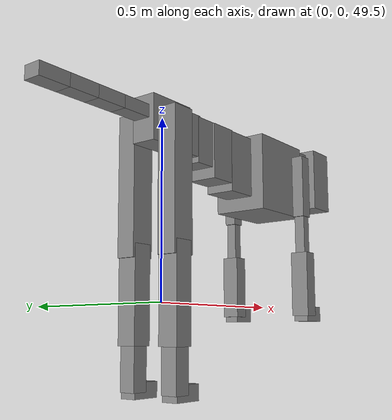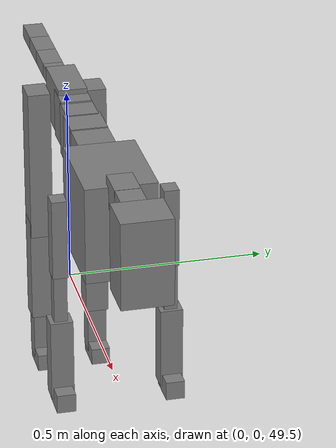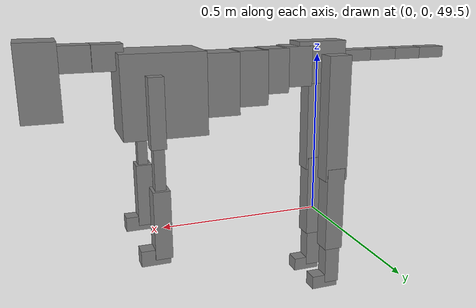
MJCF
<mujoco model="dog">

    <default>
        <joint armature="0.02" stiffness="1" damping="0.2" limited="true"/>
        <geom condim="3" friction="1 0.05 0.05" margin="0.01"/>
        <motor ctrllimited="true" ctrlrange="-1.0 1.0" forcelimited="true" gear="50"/>
    </default>

    <compiler inertiafromgeom="true" angle="radian"/>

    <option timestep="0.016" iterations="50" tolerance="1e-10" solver="Newton" jacobian="dense" cone="pyramidal"/>

    <size nconmax="20000" njmax="60000" nstack="5000000"/>
    <visual>
        <map force="0.1" zfar="30"/>
        <rgba haze="0.15 0.25 0.35 1"/>
        <quality shadowsize="2048"/>
        <global offwidth="800" offheight="800"/>
    </visual>

    <asset>
        <texture type="skybox" builtin="gradient" rgb1="0.3 0.5 0.7" rgb2="0 0 0" width="512" height="512"/>
        <texture name="texplane" type="2d" builtin="checker" rgb1=".2 .3 .4" rgb2=".1 0.15 0.2" width="512" height="512"
                 mark="cross" markrgb=".8 .8 .8"/>
        <texture name="texgeom" type="cube" builtin="flat" mark="cross" width="127" height="1278" rgb1="0.8 0.6 0.4"
                 rgb2="0.8 0.6 0.4" markrgb="1 1 1" random="0.01"/>

        <material name="matplane" reflectance="0.3" texture="texplane" texrepeat="1 1" texuniform="true"/>
        <material name="matgeom" texture="texgeom" texuniform="true" rgba="0.8 0.6 .4 1"/>
    </asset>

    <worldbody>
        <geom name="floor" pos="0 0 0" size="0 0 .25" type="plane" material="matplane" condim="3"/>

        <light directional="false" diffuse=".2 .2 .2" specular="0 0 0" pos="0 0 5" dir="0 0 -1" castshadow="false"/>
        <light mode="targetbodycom" target="torso" directional="false" diffuse=".8 .8 .8" specular="0.3 0.3 0.3"
               pos="0 0 4.0" dir="0 0 -1"/>

        <body name="root" pos="0 0 50">
            <freejoint name="root_1"/>
            <geom type="box" pos="0 0 -0.02" size="0.0774  0.0358  0.063" density="2030"/>

            <body name="spine1" pos="0.054 0 0">
                <joint name="spine1_y" axis="0 1 0" range="0 0.7" limited="true"/>
                <geom type="box" pos="0.02375 0 -0.03" size="0.04375  0.0375  0.05985" density="2030"/>

                <body name="spine2" pos="0.0612 0 0">
                    <joint name="spine2_y" axis="0 1 0" range="-0.15 0.15" limited="true"/>
                    <geom type="box" pos="0.03555  0  -0.04" size="0.04055  0.039  0.06615" density="2030"/>

                    <body name="spine3" pos="0.0730 0 0">
                        <joint name="spine3_y" axis="0 1 0" range="-0.15 0.15" limited="true"/>
                        <geom type="box" pos="0.03555  0  -0.057" size="0.04555  0.0445  0.081" density="2030"/>

                        <body name="spine4" pos="0.0780 0 0">
                            <joint name="spine4_y" axis="0 1 0" range="-0.15 0.15" limited="true"/>
                            <geom type="box" pos="0.05265  0  -0.07" size="0.05265  0.045  0.09135" density="2030"/>

                            <body name="torso" pos="0.1082 0 0">
                                <joint name="torso_y" axis="0 1 0" range="-0.15 0.15" limited="true"/>
                                <geom type="box" pos="0.11925  0  -0.085" size="0.11925  0.085  0.11745"
                                      density="2030"/>

                                <body name="neck1" pos="0.2160  0   0.0180">
                                    <joint name="neck1_y" axis="0 1 0" range="-1.2  -1" limited="true"/>
                                    <geom type="box" pos="0.0423  0  0" size="0.0423  0.03  0.036" density="2325"/>

                                    <body name="neck2" pos="0.0853  0  0">
                                        <joint name="neck2_y" axis="0 1 0" range="0.1  0" limited="true"/>
                                        <geom type="box" pos="0.0423  0  0" size="0.0423  0.03  0.036" density="2325"/>

                                        <body name="head" pos="0.0853  0  0">
                                            <joint name="head_y" axis="0 1 0" range="-0.3  -0.2" limited="true"/>
                                            <geom type="box" pos="0.0531  0  -0.055" size="0.0531  0.06  0.1044"
                                                  density="4030"/>

                                        </body>
                                    </body>
                                </body>

                                <body name="front_shoulder" pos="0.156  0   -0.0480">
                                    <joint name="front_shoulder_y" axis="0 1 0" range="-1 1.5" limited="true"/>
                                    <geom type="box" pos="0 0.13 -0.0698" size="0.0213  0.0182  0.0965" density="1158"/>
                                    <geom type="box" pos="0 -0.13 -0.0698" size="0.0213  0.0182  0.0965"
                                          density="1158"/>

                                    <body name="front_elbow" pos="0  0  -0.1397">
                                        <joint name="front_elbow_y" axis="0 1 0" range="-2 0" limited="true"/>
                                        <geom type="box" pos="0 0.13 -0.0773" size="0.0153  0.0157  0.0773"
                                              density="1081"/>
                                        <geom type="box" pos="0 -0.13 -0.0773" size="0.0153  0.0157  0.0773"
                                              density="1081"/>

                                        <body name="front_wrist" pos="0  0  -0.1546">
                                            <joint name="front_wrist_y" axis="0 1 0" range="-0.2 0" limited="true"/>
                                            <geom type="box" pos="0 0.13 -0.0853" size="0.0242  0.0269  0.0985"
                                                  density="1664"/>
                                            <geom type="box" pos="0 -0.13 -0.0853" size="0.0242  0.0269  0.0985"
                                                  density="1664"/>

                                            <body name="front_finger_end" pos="0  0  -0.1706">
                                                <joint name="front_finger_y" axis="0 1 0" range="-0.4 1"
                                                       limited="true"/>
                                                <geom type="box" pos="0.0223  0.13  -0.0076"
                                                      size="0.0409  0.0223  0.0226" density="1515"/>
                                                <geom type="box" pos="0.0223  -0.13  -0.0076"
                                                      size="0.0409  0.0223  0.0226" density="1515"/>

                                            </body>

                                        </body>
                                    </body>
                                </body>

                            </body>
                        </body>
                    </body>
                </body>
            </body>

            <body name="back_hip" pos="-0.03 0 -0.018">
                <joint name="back_hip_y" axis="0 1 0" range="-1.5 0.3" limited="true"/>
                <geom type="box" pos="0 0.07 -0.1707" size="0.0358  0.0281  0.1935" density="1154"/>
                <geom type="box" pos="0 -0.07 -0.1707" size="0.0358  0.0281  0.1935" density="1154"/>

                <body name="back_knee" pos="0  0  -0.3415">
                    <joint name="back_knee_y" axis="0 1 0" range="0 2.8" limited="true"/>
                    <geom type="box" pos="0 0.07 -0.1187" size="0.0294  0.0290  0.1342" density="1227"/>
                    <geom type="box" pos="0 -0.07 -0.1187" size="0.0294  0.0290  0.1342" density="1227"/>

                    <body name="back_ankle" pos="0  0  -0.2373">
                        <joint name="back_ankle_y" axis="0 1 0" range="-2.2 0" limited="true"/>
                        <geom type="box" pos="0 0.07 -0.0616" size="0.0240  0.0240  0.0728" density="1284"/>
                        <geom type="box" pos="0 -0.07 -0.0616" size="0.0240  0.0240  0.0728" density="1284"/>

                        <body name="back_toe_end" pos="0  0  -0.1232">
                            <joint name="back_toe_y" axis="0 1 0" range="-0.4 1" limited="true"/>
                            <geom type="box" pos="0.0236  0.07  -0.0063" size="0.0433  0.0236  0.0213" density="1515"/>
                            <geom type="box" pos="0.0236  -0.07  -0.0063" size="0.0433  0.0236  0.0213" density="1515"/>

                        </body>
                    </body>
                </body>
            </body>

            <body name="tail1" pos="-0.074 0 -0.006">
                <joint name="tail1_y" axis="0 1 0" range="-0.2 0.2" limited="true"/>
                <geom type="box" pos="-0.0536  0  0" size="0.045  0.025  0.0175" density="1587"/>

                <body name="tail2" pos="-0.09 0 0">
                    <joint name="tail2_y" axis="0 1 0" range="-0.2 0.2" limited="true"/>
                    <geom type="box" pos="-0.0536  0  0" size="0.045  0.025  0.0175" density="1587"/>

                    <body name="tail3" pos="-0.09 0 0">
                        <joint name="tail3_y" axis="0 1 0" range="-0.2 0.2" limited="true"/>
                        <geom type="box" pos="-0.0536  0  0" size="0.045  0.025  0.0175" density="1587"/>

                        <body name="tail4" pos="-0.09 0 0">
                            <joint name="tail4_y" axis="0 1 0" range="-0.2 0.2" limited="true"/>
                            <geom type="box" pos="-0.0536  0  0" size="0.045  0.025  0.0175" density="1587"/>

                        </body>
                    </body>
                </body>
            </body>
        </body>
    </worldbody>

    <actuator>
        <motor joint="spine1_y" forcerange="-150 150     "/>
        <motor joint="spine2_y" forcerange="-150 150     "/>
        <motor joint="spine3_y" forcerange="-150 150     "/>
        <motor joint="spine4_y" forcerange="-150 150     "/>
        <motor joint="torso_y" forcerange="-150 150     "/>
        <motor joint="neck1_y" forcerange="-100 100       "/>
        <motor joint="neck2_y" forcerange="-100 100       "/>
        <motor joint="head_y" forcerange="-150 150       "/>
        <motor joint="front_shoulder_y" forcerange="-110.77 110.75"/>
        <motor joint="front_elbow_y" forcerange="-110.76 103.10"/>
        <motor joint="front_wrist_y" forcerange="-96.89 118.10"/>
        <motor joint="front_finger_y" forcerange="-54.99 23.96"/>
        <motor joint="back_hip_y" forcerange="-374.25 200.17"/>
        <motor joint="back_knee_y" forcerange="-372.61 249.46"/>
        <motor joint="back_angle_y" forcerange="-217.80 65.57"/>
        <motor joint="back_toe_y" forcerange="-52.52 56.35"/>
        <motor joint="tail1_y" forcerange="-50 50     "/>
        <motor joint="tail2_y" forcerange="-50 50     "/>
        <motor joint="tail3_y" forcerange="-50 50     "/>
        <motor joint="tail4_y" forcerange="-50 50     "/>
    </actuator>
</mujoco>
